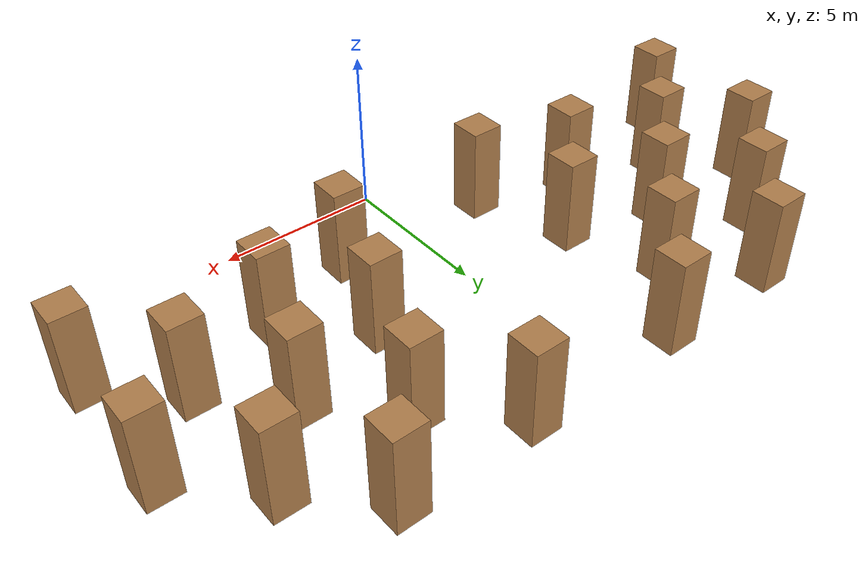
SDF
<sdf version="1.7">
 <world name="default">
  <light name="sun" type="directional">
   <pose>0 0 1000 0 -0 0</pose>
   <diffuse>1 1 1 1</diffuse>
   <specular>0.6 0.6 0.6 1</specular>
   <direction>0.1 0.1 -0.9</direction>
   <attenuation>
    <range>20</range>
    <constant>0.5</constant>
    <linear>0.01</linear>
    <quadratic>0.001</quadratic>
   </attenuation>
   <spot><inner_angle>0</inner_angle><outer_angle>0</outer_angle><falloff>0</falloff></spot>
  </light>
  <gravity>0 0 -9.8</gravity>
  <magnetic_field>6e-06 2.3e-05 -4.2e-05</magnetic_field>
  <atmosphere type="adiabatic"/>
  <physics name="default_physics" default="0" type="ode">
   <max_step_size>0.001</max_step_size>
   <real_time_factor>1</real_time_factor>
   <real_time_update_rate>1000</real_time_update_rate>
  </physics>
  <scene><ambient>0.4 0.4 0.4 1</ambient><background>0.7 0.7 0.7 1</background><shadows>1</shadows></scene>
  <spherical_coordinates>
   <surface_model>EARTH_WGS84</surface_model>
   <latitude_deg>0</latitude_deg>
   <longitude_deg>0</longitude_deg>
   <elevation>0</elevation>
   <heading_deg>0</heading_deg>
  </spherical_coordinates>
  <model name="Box (obstacle)">
   <pose>2.51078 2.49295 1.5 1e-06 1e-06 -1.58297</pose>
   <link name="link">
    <collision name="collision"><geometry><box><size>1 1 3</size></box></geometry></collision>
    <visual name="visual">
     <geometry><box><size>1 1 3</size></box></geometry>
     <material>
      <script><uri>file://media/materials/scripts/gazebo.material</uri><name>Gazebo/Wood</name></script>
     </material>
    </visual>
    <inertial>
     <inertia><ixx>1</ixx><ixy>0</ixy><ixz>0</ixz><iyy>1</iyy><iyz>0</iyz><izz>1</izz></inertia>
     <mass>1</mass>
    </inertial>
   </link>
  </model>
  <model name="Box (obstacle)_0">
   <pose>5.52558 3.47495 1.5 1e-06 -0 -2.7e-05</pose>
   <link name="link">
    <collision name="collision"><geometry><box><size>1 1 3</size></box></geometry></collision>
    <visual name="visual">
     <geometry><box><size>1 1 3</size></box></geometry>
     <material>
      <script><uri>file://media/materials/scripts/gazebo.material</uri><name>Gazebo/Wood</name></script>
     </material>
    </visual>
    <inertial>
     <inertia><ixx>1</ixx><ixy>0</ixy><ixz>0</ixz><iyy>1</iyy><iyz>0</iyz><izz>1</izz></inertia>
     <mass>1</mass>
    </inertial>
   </link>
  </model>
  <model name="Box (obstacle)_1">
   <pose>3.46891 5.49463 1.5 -1e-06 0 -0.000155</pose>
   <link name="link">
    <collision name="collision"><geometry><box><size>1 1 3</size></box></geometry></collision>
    <visual name="visual">
     <geometry><box><size>1 1 3</size></box></geometry>
     <material>
      <script><uri>file://media/materials/scripts/gazebo.material</uri><name>Gazebo/Wood</name></script>
     </material>
    </visual>
    <inertial>
     <inertia><ixx>1</ixx><ixy>0</ixy><ixz>0</ixz><iyy>1</iyy><iyz>0</iyz><izz>1</izz></inertia>
     <mass>1</mass>
    </inertial>
   </link>
  </model>
  <model name="Box (obstacle)_2">
   <pose>6.52481 6.50307 1.5 -1e-06 -0 0.000522</pose>
   <link name="link">
    <collision name="collision"><geometry><box><size>1 1 3</size></box></geometry></collision>
    <visual name="visual">
     <geometry><box><size>1 1 3</size></box></geometry>
     <material>
      <script><uri>file://media/materials/scripts/gazebo.material</uri><name>Gazebo/Wood</name></script>
     </material>
    </visual>
    <inertial>
     <inertia><ixx>1</ixx><ixy>0</ixy><ixz>0</ixz><iyy>1</iyy><iyz>0</iyz><izz>1</izz></inertia>
     <mass>1</mass>
    </inertial>
   </link>
  </model>
  <model name="Box (obstacle)_5">
   <pose>8.51138 4.47774 1.5 1e-06 1e-06 -0.000127</pose>
   <link name="link">
    <collision name="collision"><geometry><box><size>1 1 3</size></box></geometry></collision>
    <visual name="visual">
     <geometry><box><size>1 1 3</size></box></geometry>
     <material>
      <script><uri>file://media/materials/scripts/gazebo.material</uri><name>Gazebo/Wood</name></script>
     </material>
    </visual>
    <inertial>
     <inertia><ixx>1</ixx><ixy>0</ixy><ixz>0</ixz><iyy>1</iyy><iyz>0</iyz><izz>1</izz></inertia>
     <mass>1</mass>
    </inertial>
   </link>
  </model>
  <model name="Box (obstacle)_6">
   <pose>4.52679 8.48597 1.5 1e-06 1e-06 -3e-06</pose>
   <link name="link">
    <collision name="collision"><geometry><box><size>1 1 3</size></box></geometry></collision>
    <visual name="visual">
     <geometry><box><size>1 1 3</size></box></geometry>
     <material>
      <script><uri>file://media/materials/scripts/gazebo.material</uri><name>Gazebo/Wood</name></script>
     </material>
    </visual>
    <inertial>
     <inertia><ixx>1</ixx><ixy>0</ixy><ixz>0</ixz><iyy>1</iyy><iyz>0</iyz><izz>1</izz></inertia>
     <mass>1</mass>
    </inertial>
   </link>
  </model>
  <model name="Box (obstacle)_7">
   <pose>10.5055 2.4811 1.5 1e-06 1e-06 0.000113</pose>
   <link name="link">
    <collision name="collision"><geometry><box><size>1 1 3</size></box></geometry></collision>
    <visual name="visual">
     <geometry><box><size>1 1 3</size></box></geometry>
     <material>
      <script><uri>file://media/materials/scripts/gazebo.material</uri><name>Gazebo/Wood</name></script>
     </material>
    </visual>
    <inertial>
     <inertia><ixx>1</ixx><ixy>0</ixy><ixz>0</ixz><iyy>1</iyy><iyz>0</iyz><izz>1</izz></inertia>
     <mass>1</mass>
    </inertial>
   </link>
  </model>
  <model name="Box (obstacle)_8">
   <pose>2.47572 10.5079 1.5 -1e-06 -1e-06 -0.000181</pose>
   <link name="link">
    <collision name="collision"><geometry><box><size>1 1 3</size></box></geometry></collision>
    <visual name="visual">
     <geometry><box><size>1 1 3</size></box></geometry>
     <material>
      <script><uri>file://media/materials/scripts/gazebo.material</uri><name>Gazebo/Wood</name></script>
     </material>
    </visual>
    <inertial>
     <inertia><ixx>1</ixx><ixy>0</ixy><ixz>0</ixz><iyy>1</iyy><iyz>0</iyz><izz>1</izz></inertia>
     <mass>1</mass>
    </inertial>
   </link>
  </model>
  <model name="Box (obstacle)_10">
   <pose>6.50454 10.4802 1.5 1e-06 -1e-06 0.009214</pose>
   <link name="link">
    <collision name="collision"><geometry><box><size>1 1 3</size></box></geometry></collision>
    <visual name="visual">
     <geometry><box><size>1 1 3</size></box></geometry>
     <material>
      <script><uri>file://media/materials/scripts/gazebo.material</uri><name>Gazebo/Wood</name></script>
     </material>
    </visual>
    <inertial>
     <inertia><ixx>1</ixx><ixy>0</ixy><ixz>0</ixz><iyy>1</iyy><iyz>0</iyz><izz>1</izz></inertia>
     <mass>1</mass>
    </inertial>
   </link>
  </model>
  <model name="Box (obstacle)_11">
   <pose>10.5143 6.43564 1.5 -2e-06 -1e-06 -0.000148</pose>
   <link name="link">
    <collision name="collision"><geometry><box><size>1 1 3</size></box></geometry></collision>
    <visual name="visual">
     <geometry><box><size>1 1 3</size></box></geometry>
     <material>
      <script><uri>file://media/materials/scripts/gazebo.material</uri><name>Gazebo/Wood</name></script>
     </material>
    </visual>
    <inertial>
     <inertia><ixx>1</ixx><ixy>0</ixy><ixz>0</ixz><iyy>1</iyy><iyz>0</iyz><izz>1</izz></inertia>
     <mass>1</mass>
    </inertial>
   </link>
  </model>
  <model name="Box (obstacle)_3">
   <pose>8.47114 8.5193 1.5 -1e-06 -0 -9e-06</pose>
   <link name="link">
    <collision name="collision"><geometry><box><size>1 1 3</size></box></geometry></collision>
    <visual name="visual">
     <geometry><box><size>1 1 3</size></box></geometry>
     <material>
      <script><uri>file://media/materials/scripts/gazebo.material</uri><name>Gazebo/Wood</name></script>
     </material>
    </visual>
    <inertial>
     <inertia><ixx>1</ixx><ixy>0</ixy><ixz>0</ixz><iyy>1</iyy><iyz>0</iyz><izz>1</izz></inertia>
     <mass>1</mass>
    </inertial>
   </link>
  </model>
  <model name="Box (obstacle)_4">
   <pose>-2.50336 2.51414 1.5 1e-06 -1e-06 -6.5e-05</pose>
   <link name="link">
    <collision name="collision"><geometry><box><size>1 1 3</size></box></geometry></collision>
    <visual name="visual">
     <geometry><box><size>1 1 3</size></box></geometry>
     <material>
      <script><uri>file://media/materials/scripts/gazebo.material</uri><name>Gazebo/Wood</name></script>
     </material>
    </visual>
    <inertial>
     <inertia><ixx>1</ixx><ixy>0</ixy><ixz>0</ixz><iyy>1</iyy><iyz>0</iyz><izz>1</izz></inertia>
     <mass>1</mass>
    </inertial>
   </link>
  </model>
  <model name="Box (obstacle)_9">
   <pose>-5.48402 3.484 1.5 -1e-06 0 -0.000291</pose>
   <link name="link">
    <collision name="collision"><geometry><box><size>1 1 3</size></box></geometry></collision>
    <visual name="visual">
     <geometry><box><size>1 1 3</size></box></geometry>
     <material>
      <script><uri>file://media/materials/scripts/gazebo.material</uri><name>Gazebo/Wood</name></script>
     </material>
    </visual>
    <inertial>
     <inertia><ixx>1</ixx><ixy>0</ixy><ixz>0</ixz><iyy>1</iyy><iyz>0</iyz><izz>1</izz></inertia>
     <mass>1</mass>
    </inertial>
   </link>
  </model>
  <model name="Box (obstacle)_12">
   <pose>-3.54445 5.5353 1.5 -1e-06 -1e-06 -8.2e-05</pose>
   <link name="link">
    <collision name="collision"><geometry><box><size>1 1 3</size></box></geometry></collision>
    <visual name="visual">
     <geometry><box><size>1 1 3</size></box></geometry>
     <material>
      <script><uri>file://media/materials/scripts/gazebo.material</uri><name>Gazebo/Wood</name></script>
     </material>
    </visual>
    <inertial>
     <inertia><ixx>1</ixx><ixy>0</ixy><ixz>0</ixz><iyy>1</iyy><iyz>0</iyz><izz>1</izz></inertia>
     <mass>1</mass>
    </inertial>
   </link>
  </model>
  <model name="Box (obstacle)_13">
   <pose>-6.50435 6.45662 1.5 -1e-06 1e-06 -0.000145</pose>
   <link name="link">
    <collision name="collision"><geometry><box><size>1 1 3</size></box></geometry></collision>
    <visual name="visual">
     <geometry><box><size>1 1 3</size></box></geometry>
     <material>
      <script><uri>file://media/materials/scripts/gazebo.material</uri><name>Gazebo/Wood</name></script>
     </material>
    </visual>
    <inertial>
     <inertia><ixx>1</ixx><ixy>0</ixy><ixz>0</ixz><iyy>1</iyy><iyz>0</iyz><izz>1</izz></inertia>
     <mass>1</mass>
    </inertial>
   </link>
  </model>
  <model name="Box (obstacle)_14">
   <pose>-8.56602 4.49185 1.5 1e-06 1e-06 0.000112</pose>
   <link name="link">
    <collision name="collision"><geometry><box><size>1 1 3</size></box></geometry></collision>
    <visual name="visual">
     <geometry><box><size>1 1 3</size></box></geometry>
     <material>
      <script><uri>file://media/materials/scripts/gazebo.material</uri><name>Gazebo/Wood</name></script>
     </material>
    </visual>
    <inertial>
     <inertia><ixx>1</ixx><ixy>0</ixy><ixz>0</ixz><iyy>1</iyy><iyz>0</iyz><izz>1</izz></inertia>
     <mass>1</mass>
    </inertial>
   </link>
  </model>
  <model name="Box (obstacle)_15">
   <pose>-4.48926 8.50227 1.5 1e-06 1e-06 -0.000205</pose>
   <link name="link">
    <collision name="collision"><geometry><box><size>1 1 3</size></box></geometry></collision>
    <visual name="visual">
     <geometry><box><size>1 1 3</size></box></geometry>
     <material>
      <script><uri>file://media/materials/scripts/gazebo.material</uri><name>Gazebo/Wood</name></script>
     </material>
    </visual>
    <inertial>
     <inertia><ixx>1</ixx><ixy>0</ixy><ixz>0</ixz><iyy>1</iyy><iyz>0</iyz><izz>1</izz></inertia>
     <mass>1</mass>
    </inertial>
   </link>
  </model>
  <model name="Box (obstacle)_16">
   <pose>-10.4928 2.50395 1.5 0 1e-06 -0.000184</pose>
   <link name="link">
    <collision name="collision"><geometry><box><size>1 1 3</size></box></geometry></collision>
    <visual name="visual">
     <geometry><box><size>1 1 3</size></box></geometry>
     <material>
      <script><uri>file://media/materials/scripts/gazebo.material</uri><name>Gazebo/Wood</name></script>
     </material>
    </visual>
    <inertial>
     <inertia><ixx>1</ixx><ixy>0</ixy><ixz>0</ixz><iyy>1</iyy><iyz>0</iyz><izz>1</izz></inertia>
     <mass>1</mass>
    </inertial>
   </link>
  </model>
  <model name="Box (obstacle)_17">
   <pose>-2.52451 10.5268 1.5 0 1e-06 -9.1e-05</pose>
   <link name="link">
    <collision name="collision"><geometry><box><size>1 1 3</size></box></geometry></collision>
    <visual name="visual">
     <geometry><box><size>1 1 3</size></box></geometry>
     <material>
      <script><uri>file://media/materials/scripts/gazebo.material</uri><name>Gazebo/Wood</name></script>
     </material>
    </visual>
    <inertial>
     <inertia><ixx>1</ixx><ixy>0</ixy><ixz>0</ixz><iyy>1</iyy><iyz>0</iyz><izz>1</izz></inertia>
     <mass>1</mass>
    </inertial>
   </link>
  </model>
  <model name="Box (obstacle)_18">
   <pose>-8.46141 8.5021 1.5 -1e-06 1e-06 0.000118</pose>
   <link name="link">
    <collision name="collision"><geometry><box><size>1 1 3</size></box></geometry></collision>
    <visual name="visual">
     <geometry><box><size>1 1 3</size></box></geometry>
     <material>
      <script><uri>file://media/materials/scripts/gazebo.material</uri><name>Gazebo/Wood</name></script>
     </material>
    </visual>
    <inertial>
     <inertia><ixx>1</ixx><ixy>0</ixy><ixz>0</ixz><iyy>1</iyy><iyz>0</iyz><izz>1</izz></inertia>
     <mass>1</mass>
    </inertial>
   </link>
  </model>
  <model name="Box (obstacle)_19">
   <pose>-10.5403 6.41066 1.5 -1e-06 1e-06 -0.001163</pose>
   <link name="link">
    <collision name="collision"><geometry><box><size>1 1 3</size></box></geometry></collision>
    <visual name="visual">
     <geometry><box><size>1 1 3</size></box></geometry>
     <material>
      <script><uri>file://media/materials/scripts/gazebo.material</uri><name>Gazebo/Wood</name></script>
     </material>
    </visual>
    <inertial>
     <inertia><ixx>1</ixx><ixy>0</ixy><ixz>0</ixz><iyy>1</iyy><iyz>0</iyz><izz>1</izz></inertia>
     <mass>1</mass>
    </inertial>
   </link>
  </model>
  <model name="Box (obstacle)_20">
   <pose>-6.53538 10.4863 1.5 1e-06 1e-06 -4e-05</pose>
   <link name="link">
    <collision name="collision"><geometry><box><size>1 1 3</size></box></geometry></collision>
    <visual name="visual">
     <geometry><box><size>1 1 3</size></box></geometry>
     <material>
      <script><uri>file://media/materials/scripts/gazebo.material</uri><name>Gazebo/Wood</name></script>
     </material>
    </visual>
    <inertial>
     <inertia><ixx>1</ixx><ixy>0</ixy><ixz>0</ixz><iyy>1</iyy><iyz>0</iyz><izz>1</izz></inertia>
     <mass>1</mass>
    </inertial>
   </link>
  </model>
 </world>
</sdf>
